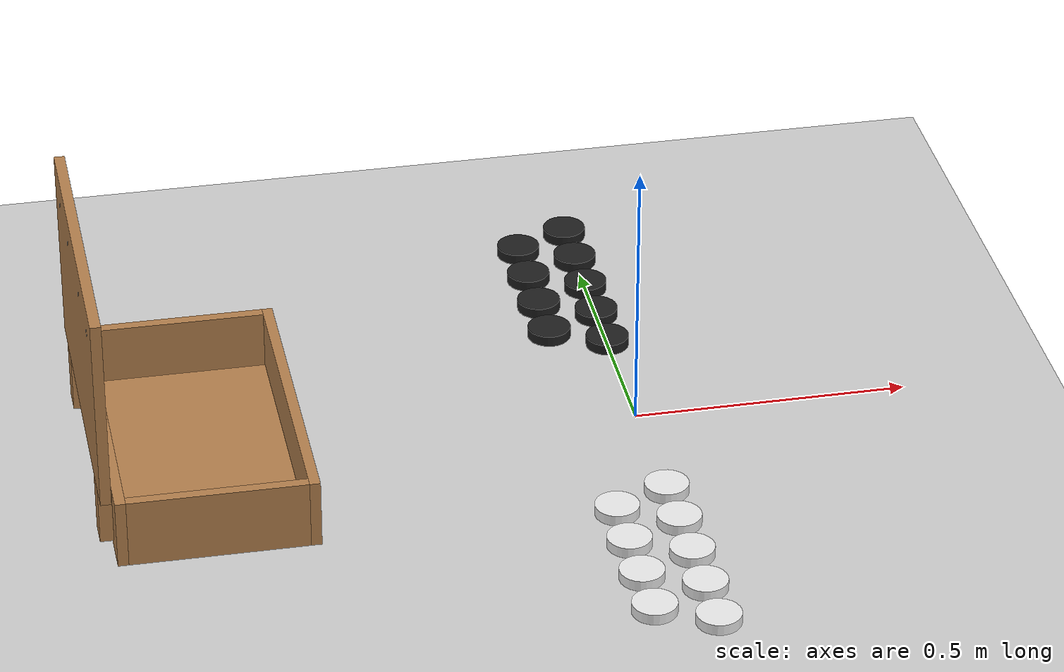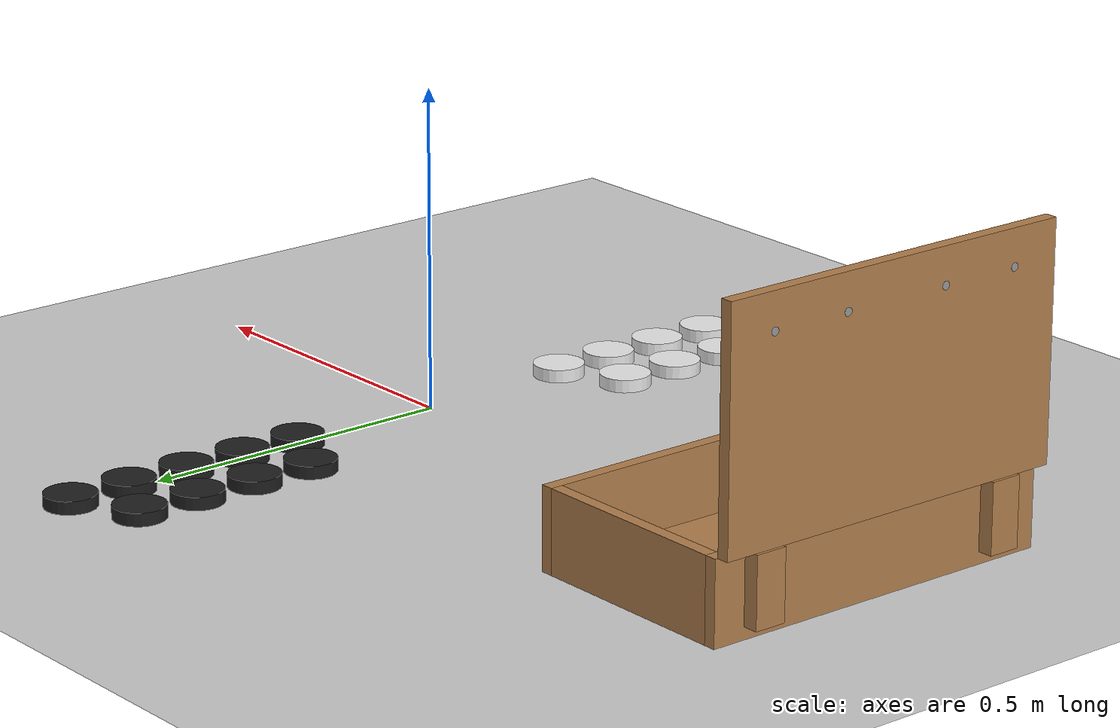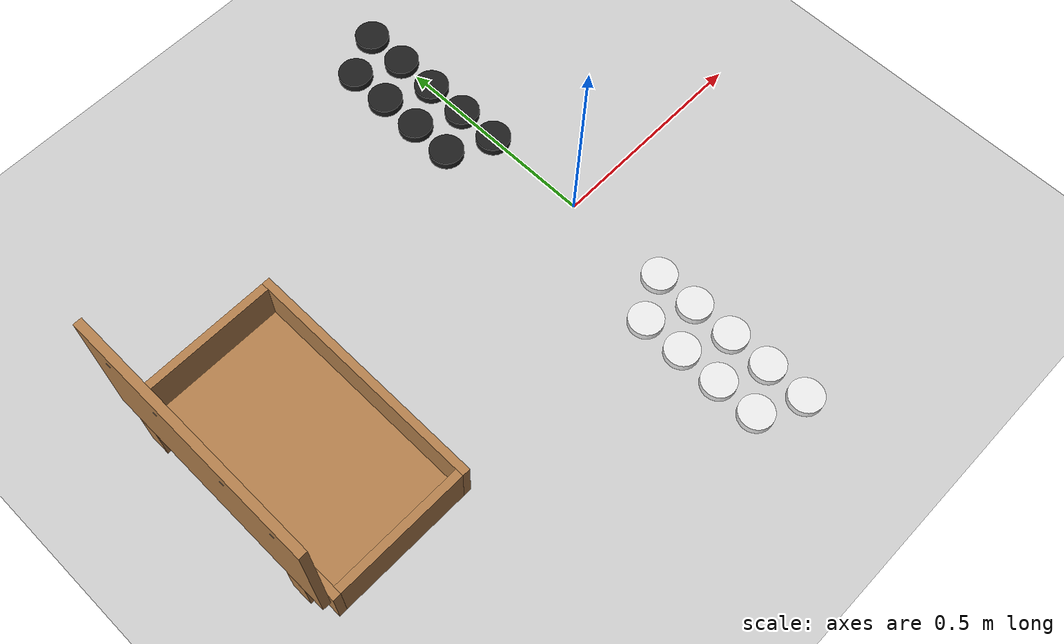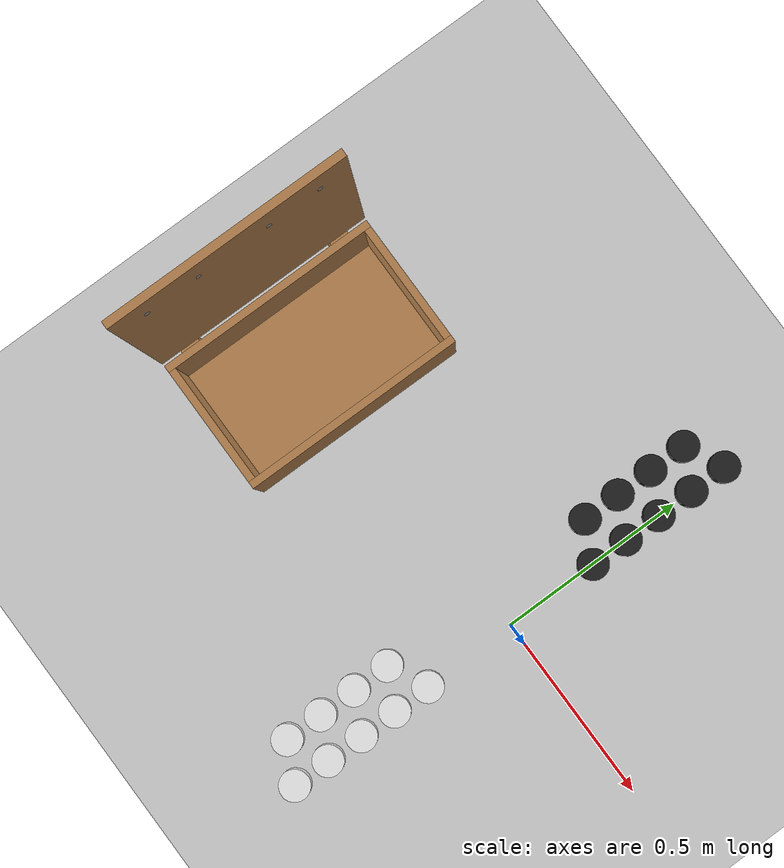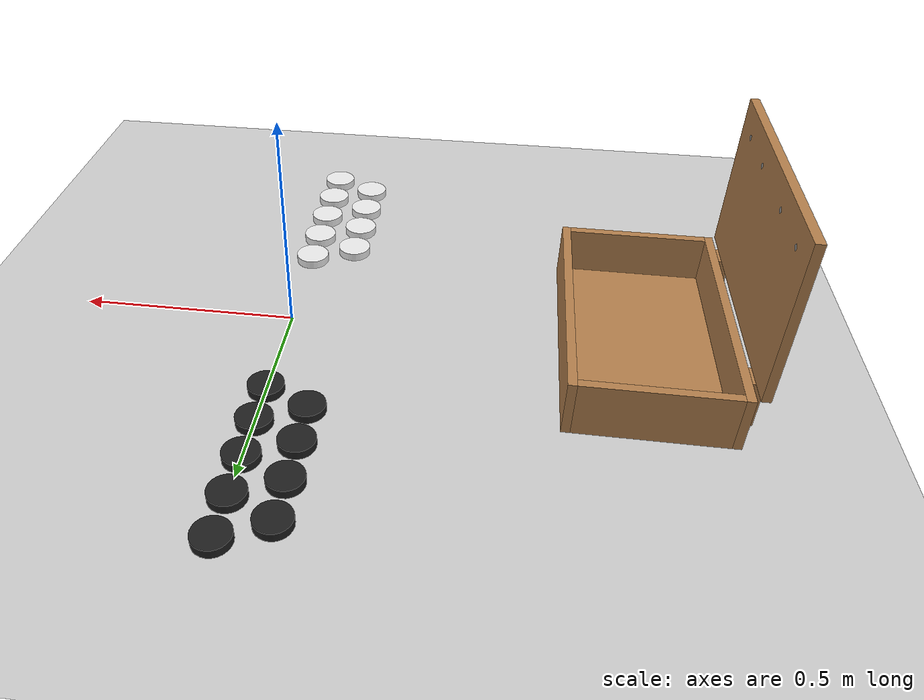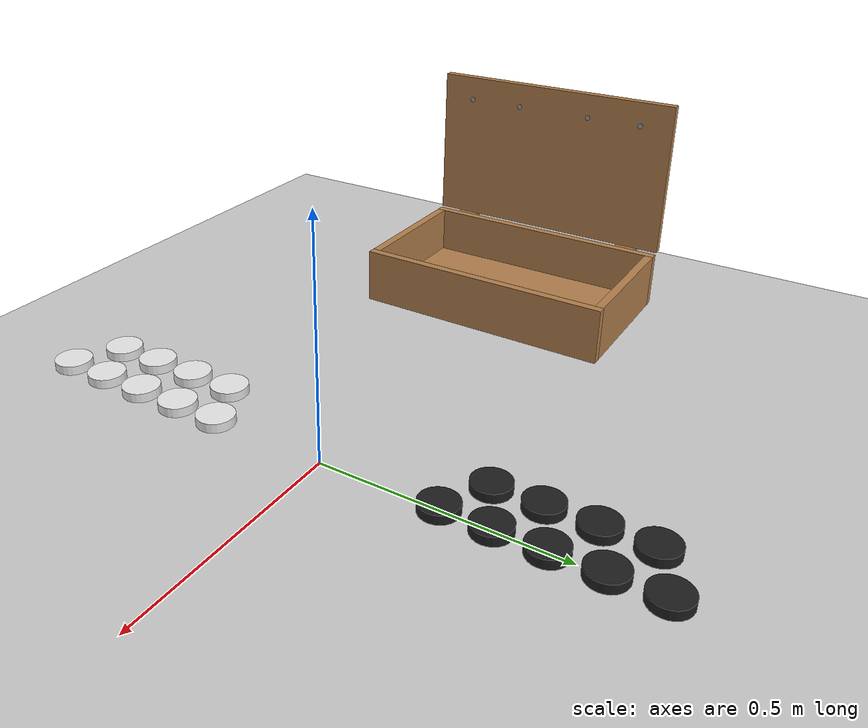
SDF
<sdf version="1.6">
 <world name="default">
  <light name="sun" type="directional">
   <pose>0 0 10 0 -0 0</pose>
   <diffuse>0.8 0.8 0.8 1</diffuse>
   <specular>0.2 0.2 0.2 1</specular>
   <attenuation>
    <range>1000</range>
    <constant>0.9</constant>
    <linear>0.01</linear>
    <quadratic>0.001</quadratic>
   </attenuation>
   <direction>-0.5 0.1 -0.9</direction>
  </light>
  <model name="ground_plane">
   <static>1</static>
   <link name="link">
    <collision name="collision">
     <geometry><plane><normal>0 0 1</normal><size>100 100</size></plane></geometry>
     <surface>
      <contact><collide_bitmask>65535</collide_bitmask></contact>
      <friction><ode><mu>100</mu><mu2>50</mu2></ode></friction>
     </surface>
    </collision>
    <visual name="visual">
     <cast_shadows>0</cast_shadows>
     <geometry><plane><normal>0 0 1</normal><size>100 100</size></plane></geometry>
     <material>
      <script><uri>file://media/materials/scripts/gazebo.material</uri><name>Gazebo/Grey</name></script>
     </material>
    </visual>
   </link>
  </model>
  <gravity>0 0 -9.8</gravity>
  <magnetic_field>6e-06 2.3e-05 -4.2e-05</magnetic_field>
  <atmosphere type="adiabatic"/>
  <physics name="default_physics" default="0" type="ode">
   <max_step_size>0.0015</max_step_size>
   <real_time_factor>1</real_time_factor>
   <real_time_update_rate>1000</real_time_update_rate>
  </physics>
  <scene><ambient>0.4 0.4 0.4 1</ambient><background>0.7 0.7 0.7 1</background><shadows>1</shadows></scene>
  <audio><device>default</device></audio>
  <spherical_coordinates>
   <surface_model>EARTH_WGS84</surface_model>
   <latitude_deg>0</latitude_deg>
   <longitude_deg>0</longitude_deg>
   <elevation>0</elevation>
   <heading_deg>0</heading_deg>
  </spherical_coordinates>
  <model name="wooden_case">
   <link name="base">
    <pose>0 0 0.024 0 -0 0</pose>
    <inertial>
     <pose>-0.022184 0 0.171592 0 -0 0</pose>
     <mass>3.96264</mass>
     <inertia>
      <ixx>0.213536</ixx>
      <ixy>0</ixy>
      <ixz>0.000779377</ixz>
      <iyy>0.0708943</iyy>
      <iyz>0</iyz>
      <izz>0.154604</izz>
     </inertia>
    </inertial>
    <collision name="collision_back">
     <pose>-0.053975 0 0.1778 0 -0 0</pose>
     <geometry><box><size>0.01905 0.5461 0.3175</size></box></geometry>
     <surface>
      <contact>
       <poissons_ratio>0.347</poissons_ratio>
       <elastic_modulus>8.8e+09</elastic_modulus>
       <ode><kp>100000</kp><kd>100</kd><max_vel>100</max_vel><min_depth>0.001</min_depth></ode>
      </contact>
      <friction>
       <torsional>
        <coefficient>1</coefficient>
        <use_patch_radius>0</use_patch_radius>
        <surface_radius>0.01</surface_radius>
       </torsional>
      </friction>
     </surface>
    </collision>
    <visual name="visual_back">
     <pose>-0.053975 0 0.1778 0 -0 0</pose>
     <geometry><box><size>0.01905 0.5461 0.3175</size></box></geometry>
     <material>
      <script><uri>file://media/materials/scripts/gazebo.material</uri><name>Gazebo/Wood</name></script>
     </material>
    </visual>
    <collision name="collision_bottom">
     <pose>0 0 0.009525 0 -0 0</pose>
     <geometry><box><size>0.127 0.5842 0.01905</size></box></geometry>
     <surface>
      <contact>
       <poissons_ratio>0.347</poissons_ratio>
       <elastic_modulus>8.8e+09</elastic_modulus>
       <ode><kp>100000</kp><kd>100</kd><max_vel>100</max_vel><min_depth>0.001</min_depth></ode>
      </contact>
      <friction>
       <torsional>
        <coefficient>1</coefficient>
        <use_patch_radius>0</use_patch_radius>
        <surface_radius>0.01</surface_radius>
       </torsional>
      </friction>
     </surface>
    </collision>
    <visual name="visual_bottom">
     <pose>0 0 0.009525 0 -0 0</pose>
     <geometry><box><size>0.127 0.5842 0.01905</size></box></geometry>
     <material>
      <script><uri>file://media/materials/scripts/gazebo.material</uri><name>Gazebo/Wood</name></script>
     </material>
    </visual>
    <collision name="collision_top">
     <pose>0 0 0.346075 0 -0 0</pose>
     <geometry><box><size>0.127 0.5842 0.01905</size></box></geometry>
     <surface>
      <contact>
       <poissons_ratio>0.347</poissons_ratio>
       <elastic_modulus>8.8e+09</elastic_modulus>
       <ode><kp>100000</kp><kd>100</kd><max_vel>100</max_vel><min_depth>0.001</min_depth></ode>
      </contact>
      <friction>
       <torsional>
        <coefficient>1</coefficient>
        <use_patch_radius>0</use_patch_radius>
        <surface_radius>0.01</surface_radius>
       </torsional>
      </friction>
     </surface>
    </collision>
    <visual name="visual_top">
     <pose>0 0 0.346075 0 -0 0</pose>
     <geometry><box><size>0.127 0.5842 0.01905</size></box></geometry>
     <material>
      <script><uri>file://media/materials/scripts/gazebo.material</uri><name>Gazebo/Wood</name></script>
     </material>
    </visual>
    <collision name="collision_left">
     <pose>0 -0.282575 0.1778 0 -0 0</pose>
     <geometry><box><size>0.127 0.01905 0.3175</size></box></geometry>
     <surface>
      <contact>
       <poissons_ratio>0.347</poissons_ratio>
       <elastic_modulus>8.8e+09</elastic_modulus>
       <ode><kp>100000</kp><kd>100</kd><max_vel>100</max_vel><min_depth>0.001</min_depth></ode>
      </contact>
      <friction>
       <torsional>
        <coefficient>1</coefficient>
        <use_patch_radius>0</use_patch_radius>
        <surface_radius>0.01</surface_radius>
       </torsional>
      </friction>
     </surface>
    </collision>
    <visual name="visual_left">
     <pose>0 -0.282575 0.1778 0 -0 0</pose>
     <geometry><box><size>0.127 0.01905 0.3175</size></box></geometry>
     <material>
      <script><uri>file://media/materials/scripts/gazebo.material</uri><name>Gazebo/Wood</name></script>
     </material>
    </visual>
    <collision name="collision_right">
     <pose>0 0.282575 0.1778 0 -0 0</pose>
     <geometry><box><size>0.127 0.01905 0.3175</size></box></geometry>
     <surface>
      <contact>
       <poissons_ratio>0.347</poissons_ratio>
       <elastic_modulus>8.8e+09</elastic_modulus>
       <ode><kp>100000</kp><kd>100</kd><max_vel>100</max_vel><min_depth>0.001</min_depth></ode>
      </contact>
      <friction>
       <torsional>
        <coefficient>1</coefficient>
        <use_patch_radius>0</use_patch_radius>
        <surface_radius>0.01</surface_radius>
       </torsional>
      </friction>
     </surface>
    </collision>
    <visual name="visual_right">
     <pose>0 0.282575 0.1778 0 -0 0</pose>
     <geometry><box><size>0.127 0.01905 0.3175</size></box></geometry>
     <material>
      <script><uri>file://media/materials/scripts/gazebo.material</uri><name>Gazebo/Wood</name></script>
     </material>
    </visual>
    <collision name="collision_block_left">
     <pose>0.0095 -0.2151 -0.012 0 -0 0</pose>
     <geometry><box><size>0.108 0.05 0.024</size></box></geometry>
     <surface>
      <contact>
       <poissons_ratio>0.347</poissons_ratio>
       <elastic_modulus>8.8e+09</elastic_modulus>
       <ode><kp>100000</kp><kd>100</kd><max_vel>100</max_vel><min_depth>0.001</min_depth></ode>
      </contact>
      <friction>
       <torsional>
        <coefficient>1</coefficient>
        <use_patch_radius>0</use_patch_radius>
        <surface_radius>0.01</surface_radius>
       </torsional>
      </friction>
     </surface>
    </collision>
    <visual name="visual_block_left">
     <pose>0.0095 -0.2151 -0.012 0 -0 0</pose>
     <geometry><box><size>0.108 0.05 0.024</size></box></geometry>
     <material>
      <script><uri>file://media/materials/scripts/gazebo.material</uri><name>Gazebo/Wood</name></script>
     </material>
    </visual>
    <collision name="collision_block_right">
     <pose>0.0095 0.2151 -0.012 0 -0 0</pose>
     <geometry><box><size>0.108 0.05 0.024</size></box></geometry>
     <surface>
      <contact>
       <poissons_ratio>0.347</poissons_ratio>
       <elastic_modulus>8.8e+09</elastic_modulus>
       <ode><kp>100000</kp><kd>100</kd><max_vel>100</max_vel><min_depth>0.001</min_depth></ode>
      </contact>
      <friction>
       <torsional>
        <coefficient>1</coefficient>
        <use_patch_radius>0</use_patch_radius>
        <surface_radius>0.01</surface_radius>
       </torsional>
      </friction>
     </surface>
    </collision>
    <visual name="visual_block_right">
     <pose>0.0095 0.2151 -0.012 0 -0 0</pose>
     <geometry><box><size>0.108 0.05 0.024</size></box></geometry>
     <material>
      <script><uri>file://media/materials/scripts/gazebo.material</uri><name>Gazebo/Wood</name></script>
     </material>
    </visual>
   </link>
   <link name="lid">
    <pose>0.243775 0 0.009525 0 -0 0</pose>
    <inertial>
     <mass>1.97874</mass>
     <inertia>
      <ixx>0.0563367</ixx>
      <ixy>0</ixy>
      <ixz>0</ixz>
      <iyy>0.020911</iyy>
      <iyz>0</iyz>
      <izz>0.0771281</izz>
     </inertia>
    </inertial>
    <collision name="collision">
     <geometry><box><size>0.3556 0.5842 0.01905</size></box></geometry>
     <surface>
      <contact>
       <poissons_ratio>0.347</poissons_ratio>
       <elastic_modulus>8.8e+09</elastic_modulus>
       <ode><kp>100000</kp><kd>100</kd><max_vel>100</max_vel><min_depth>0.001</min_depth></ode>
      </contact>
      <friction>
       <torsional>
        <coefficient>1</coefficient>
        <use_patch_radius>0</use_patch_radius>
        <surface_radius>0.01</surface_radius>
       </torsional>
      </friction>
     </surface>
    </collision>
    <visual name="visual">
     <geometry><box><size>0.3556 0.5842 0.01905</size></box></geometry>
     <material>
      <script><uri>file://media/materials/scripts/gazebo.material</uri><name>Gazebo/Wood</name></script>
     </material>
    </visual>
    <visual name="tee_nut_1">
     <pose>0.122 -0.216 0 0 -0 0</pose>
     <geometry><cylinder><radius>0.00635</radius><length>0.0192405</length></cylinder></geometry>
     <material>
      <script><uri>file://media/materials/scripts/gazebo.material</uri><name>Gazebo/Grey</name></script>
     </material>
    </visual>
    <visual name="tee_nut_2">
     <pose>0.122 -0.088 0 0 -0 0</pose>
     <geometry><cylinder><radius>0.00635</radius><length>0.0192405</length></cylinder></geometry>
     <material>
      <script><uri>file://media/materials/scripts/gazebo.material</uri><name>Gazebo/Grey</name></script>
     </material>
    </visual>
    <visual name="tee_nut_3">
     <pose>0.122 0.088 0 0 -0 0</pose>
     <geometry><cylinder><radius>0.00635</radius><length>0.0192405</length></cylinder></geometry>
     <material>
      <script><uri>file://media/materials/scripts/gazebo.material</uri><name>Gazebo/Grey</name></script>
     </material>
    </visual>
    <visual name="tee_nut_4">
     <pose>0.122 0.216 0 0 -0 0</pose>
     <geometry><cylinder><radius>0.00635</radius><length>0.0192405</length></cylinder></geometry>
     <material>
      <script><uri>file://media/materials/scripts/gazebo.material</uri><name>Gazebo/Grey</name></script>
     </material>
    </visual>
   </link>
   <joint name="lid_hinge" type="revolute">
    <pose>-0.1778 0 0.01905 0 -0 0</pose>
    <parent>base</parent>
    <child>lid</child>
    <axis>
     <xyz>0 1 0</xyz>
     <limit><upper>0.523599</upper><lower>-1.5708</lower></limit>
     <use_parent_model_frame>0</use_parent_model_frame>
     <dynamics><spring_reference>0</spring_reference><spring_stiffness>0</spring_stiffness></dynamics>
    </axis>
   </joint>
   <pose>-0.99996 -0 0.06245 0 -1.57069 3.13789</pose>
  </model>
  <model name="black_piece">
   <link name="link">
    <inertial>
     <mass>0.2</mass>
     <inertia>
      <ixx>8.667e-05</ixx>
      <ixy>0</ixy>
      <ixz>0</ixz>
      <iyy>8.667e-05</iyy>
      <iyz>0</iyz>
      <izz>0.00016</izz>
     </inertia>
    </inertial>
    <visual name="visual">
     <geometry><cylinder><radius>0.04</radius><length>0.02</length></cylinder></geometry>
     <material>
      <script><name>Gazebo/Black</name><uri>file://media/materials/scripts/gazebo.material</uri></script>
      <shader type="vertex"><normal_map>__default__</normal_map></shader>
     </material>
    </visual>
    <collision name="collision">
     <geometry><cylinder><radius>0.04</radius><length>0.02</length></cylinder></geometry>
     <surface>
      <friction>
       <ode><mu>1</mu><mu2>1</mu2><fdir1>0 0 0</fdir1><slip1>0</slip1><slip2>0</slip2></ode>
       <torsional>
        <coefficient>1</coefficient>
        <patch_radius>0</patch_radius>
        <surface_radius>0</surface_radius>
        <use_patch_radius>1</use_patch_radius>
        <ode><slip>0</slip></ode>
       </torsional>
      </friction>
      <bounce><restitution_coefficient>0</restitution_coefficient><threshold>1e+06</threshold></bounce>
      <contact>
       <collide_without_contact>0</collide_without_contact>
       <collide_without_contact_bitmask>1</collide_without_contact_bitmask>
       <collide_bitmask>1</collide_bitmask>
       <ode>
        <soft_cfm>0</soft_cfm>
        <soft_erp>0.2</soft_erp>
        <kp>1e+13</kp>
        <kd>1</kd>
        <max_vel>1</max_vel>
        <min_depth>0</min_depth>
       </ode>
       <bullet>
        <split_impulse>1</split_impulse>
        <split_impulse_penetration_threshold>-0.01</split_impulse_penetration_threshold>
        <soft_cfm>0</soft_cfm>
        <soft_erp>0.2</soft_erp>
        <kp>1e+13</kp>
        <kd>1</kd>
       </bullet>
      </contact>
     </surface>
    </collision>
   </link>
   <static>0</static>
   <pose>-4e-06 0.250003 0.009996 7.6e-05 7.7e-05 -0.000252</pose>
  </model>
  <model name="black_piece_clone">
   <link name="link">
    <inertial>
     <mass>0.2</mass>
     <inertia>
      <ixx>8.667e-05</ixx>
      <ixy>0</ixy>
      <ixz>0</ixz>
      <iyy>8.667e-05</iyy>
      <iyz>0</iyz>
      <izz>0.00016</izz>
     </inertia>
    </inertial>
    <visual name="visual">
     <geometry><cylinder><radius>0.04</radius><length>0.02</length></cylinder></geometry>
     <material>
      <script><name>Gazebo/Black</name><uri>file://media/materials/scripts/gazebo.material</uri></script>
      <shader type="vertex"><normal_map>__default__</normal_map></shader>
     </material>
    </visual>
    <collision name="collision">
     <geometry><cylinder><radius>0.04</radius><length>0.02</length></cylinder></geometry>
     <surface>
      <friction>
       <ode><mu>1</mu><mu2>1</mu2><fdir1>0 0 0</fdir1><slip1>0</slip1><slip2>0</slip2></ode>
       <torsional>
        <coefficient>1</coefficient>
        <patch_radius>0</patch_radius>
        <surface_radius>0</surface_radius>
        <use_patch_radius>1</use_patch_radius>
        <ode><slip>0</slip></ode>
       </torsional>
      </friction>
      <bounce><restitution_coefficient>0</restitution_coefficient><threshold>1e+06</threshold></bounce>
      <contact>
       <collide_without_contact>0</collide_without_contact>
       <collide_without_contact_bitmask>1</collide_without_contact_bitmask>
       <collide_bitmask>1</collide_bitmask>
       <ode>
        <soft_cfm>0</soft_cfm>
        <soft_erp>0.2</soft_erp>
        <kp>1e+13</kp>
        <kd>1</kd>
        <max_vel>1</max_vel>
        <min_depth>0</min_depth>
       </ode>
       <bullet>
        <split_impulse>1</split_impulse>
        <split_impulse_penetration_threshold>-0.01</split_impulse_penetration_threshold>
        <soft_cfm>0</soft_cfm>
        <soft_erp>0.2</soft_erp>
        <kp>1e+13</kp>
        <kd>1</kd>
       </bullet>
      </contact>
     </surface>
    </collision>
   </link>
   <static>0</static>
   <pose>-4e-06 0.350003 0.01 0 0 -0.000215</pose>
  </model>
  <model name="black_piece_clone_clone">
   <link name="link">
    <inertial>
     <mass>0.2</mass>
     <inertia>
      <ixx>8.667e-05</ixx>
      <ixy>0</ixy>
      <ixz>0</ixz>
      <iyy>8.667e-05</iyy>
      <iyz>0</iyz>
      <izz>0.00016</izz>
     </inertia>
    </inertial>
    <visual name="visual">
     <geometry><cylinder><radius>0.04</radius><length>0.02</length></cylinder></geometry>
     <material>
      <script><name>Gazebo/Black</name><uri>file://media/materials/scripts/gazebo.material</uri></script>
      <shader type="vertex"><normal_map>__default__</normal_map></shader>
     </material>
    </visual>
    <collision name="collision">
     <geometry><cylinder><radius>0.04</radius><length>0.02</length></cylinder></geometry>
     <surface>
      <friction>
       <ode><mu>1</mu><mu2>1</mu2><fdir1>0 0 0</fdir1><slip1>0</slip1><slip2>0</slip2></ode>
       <torsional>
        <coefficient>1</coefficient>
        <patch_radius>0</patch_radius>
        <surface_radius>0</surface_radius>
        <use_patch_radius>1</use_patch_radius>
        <ode><slip>0</slip></ode>
       </torsional>
      </friction>
      <bounce><restitution_coefficient>0</restitution_coefficient><threshold>1e+06</threshold></bounce>
      <contact>
       <collide_without_contact>0</collide_without_contact>
       <collide_without_contact_bitmask>1</collide_without_contact_bitmask>
       <collide_bitmask>1</collide_bitmask>
       <ode>
        <soft_cfm>0</soft_cfm>
        <soft_erp>0.2</soft_erp>
        <kp>1e+13</kp>
        <kd>1</kd>
        <max_vel>1</max_vel>
        <min_depth>0</min_depth>
       </ode>
       <bullet>
        <split_impulse>1</split_impulse>
        <split_impulse_penetration_threshold>-0.01</split_impulse_penetration_threshold>
        <soft_cfm>0</soft_cfm>
        <soft_erp>0.2</soft_erp>
        <kp>1e+13</kp>
        <kd>1</kd>
       </bullet>
      </contact>
     </surface>
    </collision>
   </link>
   <static>0</static>
   <pose>-3e-06 0.450003 0.01 0 0 -0.000207</pose>
  </model>
  <model name="black_piece_clone_clone_0">
   <link name="link">
    <inertial>
     <mass>0.2</mass>
     <inertia>
      <ixx>8.667e-05</ixx>
      <ixy>0</ixy>
      <ixz>0</ixz>
      <iyy>8.667e-05</iyy>
      <iyz>0</iyz>
      <izz>0.00016</izz>
     </inertia>
    </inertial>
    <visual name="visual">
     <geometry><cylinder><radius>0.04</radius><length>0.02</length></cylinder></geometry>
     <material>
      <script><name>Gazebo/Black</name><uri>file://media/materials/scripts/gazebo.material</uri></script>
      <shader type="vertex"><normal_map>__default__</normal_map></shader>
     </material>
    </visual>
    <collision name="collision">
     <geometry><cylinder><radius>0.04</radius><length>0.02</length></cylinder></geometry>
     <surface>
      <friction>
       <ode><mu>1</mu><mu2>1</mu2><fdir1>0 0 0</fdir1><slip1>0</slip1><slip2>0</slip2></ode>
       <torsional>
        <coefficient>1</coefficient>
        <patch_radius>0</patch_radius>
        <surface_radius>0</surface_radius>
        <use_patch_radius>1</use_patch_radius>
        <ode><slip>0</slip></ode>
       </torsional>
      </friction>
      <bounce><restitution_coefficient>0</restitution_coefficient><threshold>1e+06</threshold></bounce>
      <contact>
       <collide_without_contact>0</collide_without_contact>
       <collide_without_contact_bitmask>1</collide_without_contact_bitmask>
       <collide_bitmask>1</collide_bitmask>
       <ode>
        <soft_cfm>0</soft_cfm>
        <soft_erp>0.2</soft_erp>
        <kp>1e+13</kp>
        <kd>1</kd>
        <max_vel>1</max_vel>
        <min_depth>0</min_depth>
       </ode>
       <bullet>
        <split_impulse>1</split_impulse>
        <split_impulse_penetration_threshold>-0.01</split_impulse_penetration_threshold>
        <soft_cfm>0</soft_cfm>
        <soft_erp>0.2</soft_erp>
        <kp>1e+13</kp>
        <kd>1</kd>
       </bullet>
      </contact>
     </surface>
    </collision>
   </link>
   <static>0</static>
   <pose>-0.100004 0.400005 0.009997 -7.3e-05 -7.1e-05 -0.000227</pose>
  </model>
  <model name="black_piece_clone_clone_1">
   <link name="link">
    <inertial>
     <mass>0.2</mass>
     <inertia>
      <ixx>8.667e-05</ixx>
      <ixy>0</ixy>
      <ixz>0</ixz>
      <iyy>8.667e-05</iyy>
      <iyz>0</iyz>
      <izz>0.00016</izz>
     </inertia>
    </inertial>
    <visual name="visual">
     <geometry><cylinder><radius>0.04</radius><length>0.02</length></cylinder></geometry>
     <material>
      <script><name>Gazebo/Black</name><uri>file://media/materials/scripts/gazebo.material</uri></script>
      <shader type="vertex"><normal_map>__default__</normal_map></shader>
     </material>
    </visual>
    <collision name="collision">
     <geometry><cylinder><radius>0.04</radius><length>0.02</length></cylinder></geometry>
     <surface>
      <friction>
       <ode><mu>1</mu><mu2>1</mu2><fdir1>0 0 0</fdir1><slip1>0</slip1><slip2>0</slip2></ode>
       <torsional>
        <coefficient>1</coefficient>
        <patch_radius>0</patch_radius>
        <surface_radius>0</surface_radius>
        <use_patch_radius>1</use_patch_radius>
        <ode><slip>0</slip></ode>
       </torsional>
      </friction>
      <bounce><restitution_coefficient>0</restitution_coefficient><threshold>1e+06</threshold></bounce>
      <contact>
       <collide_without_contact>0</collide_without_contact>
       <collide_without_contact_bitmask>1</collide_without_contact_bitmask>
       <collide_bitmask>1</collide_bitmask>
       <ode>
        <soft_cfm>0</soft_cfm>
        <soft_erp>0.2</soft_erp>
        <kp>1e+13</kp>
        <kd>1</kd>
        <max_vel>1</max_vel>
        <min_depth>0</min_depth>
       </ode>
       <bullet>
        <split_impulse>1</split_impulse>
        <split_impulse_penetration_threshold>-0.01</split_impulse_penetration_threshold>
        <soft_cfm>0</soft_cfm>
        <soft_erp>0.2</soft_erp>
        <kp>1e+13</kp>
        <kd>1</kd>
       </bullet>
      </contact>
     </surface>
    </collision>
   </link>
   <static>0</static>
   <pose>-4e-06 0.550005 0.009997 -7.3e-05 -7.1e-05 -0.000229</pose>
  </model>
  <model name="black_piece_clone_clone_2">
   <link name="link">
    <inertial>
     <mass>0.2</mass>
     <inertia>
      <ixx>8.667e-05</ixx>
      <ixy>0</ixy>
      <ixz>0</ixz>
      <iyy>8.667e-05</iyy>
      <iyz>0</iyz>
      <izz>0.00016</izz>
     </inertia>
    </inertial>
    <visual name="visual">
     <geometry><cylinder><radius>0.04</radius><length>0.02</length></cylinder></geometry>
     <material>
      <script><name>Gazebo/Black</name><uri>file://media/materials/scripts/gazebo.material</uri></script>
      <shader type="vertex"><normal_map>__default__</normal_map></shader>
     </material>
    </visual>
    <collision name="collision">
     <geometry><cylinder><radius>0.04</radius><length>0.02</length></cylinder></geometry>
     <surface>
      <friction>
       <ode><mu>1</mu><mu2>1</mu2><fdir1>0 0 0</fdir1><slip1>0</slip1><slip2>0</slip2></ode>
       <torsional>
        <coefficient>1</coefficient>
        <patch_radius>0</patch_radius>
        <surface_radius>0</surface_radius>
        <use_patch_radius>1</use_patch_radius>
        <ode><slip>0</slip></ode>
       </torsional>
      </friction>
      <bounce><restitution_coefficient>0</restitution_coefficient><threshold>1e+06</threshold></bounce>
      <contact>
       <collide_without_contact>0</collide_without_contact>
       <collide_without_contact_bitmask>1</collide_without_contact_bitmask>
       <collide_bitmask>1</collide_bitmask>
       <ode>
        <soft_cfm>0</soft_cfm>
        <soft_erp>0.2</soft_erp>
        <kp>1e+13</kp>
        <kd>1</kd>
        <max_vel>1</max_vel>
        <min_depth>0</min_depth>
       </ode>
       <bullet>
        <split_impulse>1</split_impulse>
        <split_impulse_penetration_threshold>-0.01</split_impulse_penetration_threshold>
        <soft_cfm>0</soft_cfm>
        <soft_erp>0.2</soft_erp>
        <kp>1e+13</kp>
        <kd>1</kd>
       </bullet>
      </contact>
     </surface>
    </collision>
   </link>
   <static>0</static>
   <pose>-0.100003 0.300005 0.009994 -7.7e-05 -7.8e-05 -0.000241</pose>
  </model>
  <model name="black_piece_clone_clone_3">
   <link name="link">
    <inertial>
     <mass>0.2</mass>
     <inertia>
      <ixx>8.667e-05</ixx>
      <ixy>0</ixy>
      <ixz>0</ixz>
      <iyy>8.667e-05</iyy>
      <iyz>0</iyz>
      <izz>0.00016</izz>
     </inertia>
    </inertial>
    <visual name="visual">
     <geometry><cylinder><radius>0.04</radius><length>0.02</length></cylinder></geometry>
     <material>
      <script><name>Gazebo/Black</name><uri>file://media/materials/scripts/gazebo.material</uri></script>
      <shader type="vertex"><normal_map>__default__</normal_map></shader>
     </material>
    </visual>
    <collision name="collision">
     <geometry><cylinder><radius>0.04</radius><length>0.02</length></cylinder></geometry>
     <surface>
      <friction>
       <ode><mu>1</mu><mu2>1</mu2><fdir1>0 0 0</fdir1><slip1>0</slip1><slip2>0</slip2></ode>
       <torsional>
        <coefficient>1</coefficient>
        <patch_radius>0</patch_radius>
        <surface_radius>0</surface_radius>
        <use_patch_radius>1</use_patch_radius>
        <ode><slip>0</slip></ode>
       </torsional>
      </friction>
      <bounce><restitution_coefficient>0</restitution_coefficient><threshold>1e+06</threshold></bounce>
      <contact>
       <collide_without_contact>0</collide_without_contact>
       <collide_without_contact_bitmask>1</collide_without_contact_bitmask>
       <collide_bitmask>1</collide_bitmask>
       <ode>
        <soft_cfm>0</soft_cfm>
        <soft_erp>0.2</soft_erp>
        <kp>1e+13</kp>
        <kd>1</kd>
        <max_vel>1</max_vel>
        <min_depth>0</min_depth>
       </ode>
       <bullet>
        <split_impulse>1</split_impulse>
        <split_impulse_penetration_threshold>-0.01</split_impulse_penetration_threshold>
        <soft_cfm>0</soft_cfm>
        <soft_erp>0.2</soft_erp>
        <kp>1e+13</kp>
        <kd>1</kd>
       </bullet>
      </contact>
     </surface>
    </collision>
   </link>
   <static>0</static>
   <pose>-3e-06 0.650004 0.009996 7.6e-05 7.7e-05 -0.000252</pose>
  </model>
  <model name="black_piece_clone_clone_4">
   <link name="link">
    <inertial>
     <mass>0.2</mass>
     <inertia>
      <ixx>8.667e-05</ixx>
      <ixy>0</ixy>
      <ixz>0</ixz>
      <iyy>8.667e-05</iyy>
      <iyz>0</iyz>
      <izz>0.00016</izz>
     </inertia>
    </inertial>
    <visual name="visual">
     <geometry><cylinder><radius>0.04</radius><length>0.02</length></cylinder></geometry>
     <material>
      <script><name>Gazebo/Black</name><uri>file://media/materials/scripts/gazebo.material</uri></script>
      <shader type="vertex"><normal_map>__default__</normal_map></shader>
     </material>
    </visual>
    <collision name="collision">
     <geometry><cylinder><radius>0.04</radius><length>0.02</length></cylinder></geometry>
     <surface>
      <friction>
       <ode><mu>1</mu><mu2>1</mu2><fdir1>0 0 0</fdir1><slip1>0</slip1><slip2>0</slip2></ode>
       <torsional>
        <coefficient>1</coefficient>
        <patch_radius>0</patch_radius>
        <surface_radius>0</surface_radius>
        <use_patch_radius>1</use_patch_radius>
        <ode><slip>0</slip></ode>
       </torsional>
      </friction>
      <bounce><restitution_coefficient>0</restitution_coefficient><threshold>1e+06</threshold></bounce>
      <contact>
       <collide_without_contact>0</collide_without_contact>
       <collide_without_contact_bitmask>1</collide_without_contact_bitmask>
       <collide_bitmask>1</collide_bitmask>
       <ode>
        <soft_cfm>0</soft_cfm>
        <soft_erp>0.2</soft_erp>
        <kp>1e+13</kp>
        <kd>1</kd>
        <max_vel>1</max_vel>
        <min_depth>0</min_depth>
       </ode>
       <bullet>
        <split_impulse>1</split_impulse>
        <split_impulse_penetration_threshold>-0.01</split_impulse_penetration_threshold>
        <soft_cfm>0</soft_cfm>
        <soft_erp>0.2</soft_erp>
        <kp>1e+13</kp>
        <kd>1</kd>
       </bullet>
      </contact>
     </surface>
    </collision>
   </link>
   <static>0</static>
   <pose>-0.100003 0.500005 0.009994 -7.7e-05 -7.8e-05 -0.000256</pose>
  </model>
  <model name="black_piece_clone_clone_5">
   <link name="link">
    <inertial>
     <mass>0.2</mass>
     <inertia>
      <ixx>8.667e-05</ixx>
      <ixy>0</ixy>
      <ixz>0</ixz>
      <iyy>8.667e-05</iyy>
      <iyz>0</iyz>
      <izz>0.00016</izz>
     </inertia>
    </inertial>
    <visual name="visual">
     <geometry><cylinder><radius>0.04</radius><length>0.02</length></cylinder></geometry>
     <material>
      <script><name>Gazebo/Black</name><uri>file://media/materials/scripts/gazebo.material</uri></script>
      <shader type="vertex"><normal_map>__default__</normal_map></shader>
     </material>
    </visual>
    <collision name="collision">
     <geometry><cylinder><radius>0.04</radius><length>0.02</length></cylinder></geometry>
     <surface>
      <friction>
       <ode><mu>1</mu><mu2>1</mu2><fdir1>0 0 0</fdir1><slip1>0</slip1><slip2>0</slip2></ode>
       <torsional>
        <coefficient>1</coefficient>
        <patch_radius>0</patch_radius>
        <surface_radius>0</surface_radius>
        <use_patch_radius>1</use_patch_radius>
        <ode><slip>0</slip></ode>
       </torsional>
      </friction>
      <bounce><restitution_coefficient>0</restitution_coefficient><threshold>1e+06</threshold></bounce>
      <contact>
       <collide_without_contact>0</collide_without_contact>
       <collide_without_contact_bitmask>1</collide_without_contact_bitmask>
       <collide_bitmask>1</collide_bitmask>
       <ode>
        <soft_cfm>0</soft_cfm>
        <soft_erp>0.2</soft_erp>
        <kp>1e+13</kp>
        <kd>1</kd>
        <max_vel>1</max_vel>
        <min_depth>0</min_depth>
       </ode>
       <bullet>
        <split_impulse>1</split_impulse>
        <split_impulse_penetration_threshold>-0.01</split_impulse_penetration_threshold>
        <soft_cfm>0</soft_cfm>
        <soft_erp>0.2</soft_erp>
        <kp>1e+13</kp>
        <kd>1</kd>
       </bullet>
      </contact>
     </surface>
    </collision>
   </link>
   <static>0</static>
   <pose>-0.100002 0.600004 0.01 0 0 -0.000257</pose>
  </model>
  <model name="white_piece">
   <link name="link">
    <inertial>
     <mass>0.2</mass>
     <inertia>
      <ixx>8.667e-05</ixx>
      <ixy>0</ixy>
      <ixz>0</ixz>
      <iyy>8.667e-05</iyy>
      <iyz>0</iyz>
      <izz>0.00016</izz>
     </inertia>
    </inertial>
    <visual name="visual">
     <geometry><cylinder><radius>0.04</radius><length>0.02</length></cylinder></geometry>
     <material>
      <script><name>Gazebo/White</name><uri>file://media/materials/scripts/gazebo.material</uri></script>
      <shader type="vertex"><normal_map>__default__</normal_map></shader>
     </material>
    </visual>
    <collision name="collision">
     <geometry><cylinder><radius>0.04</radius><length>0.02</length></cylinder></geometry>
     <surface>
      <friction>
       <ode><mu>1</mu><mu2>1</mu2><fdir1>0 0 0</fdir1><slip1>0</slip1><slip2>0</slip2></ode>
       <torsional>
        <coefficient>1</coefficient>
        <patch_radius>0</patch_radius>
        <surface_radius>0</surface_radius>
        <use_patch_radius>1</use_patch_radius>
        <ode><slip>0</slip></ode>
       </torsional>
      </friction>
      <bounce><restitution_coefficient>0</restitution_coefficient><threshold>1e+06</threshold></bounce>
      <contact>
       <collide_without_contact>0</collide_without_contact>
       <collide_without_contact_bitmask>1</collide_without_contact_bitmask>
       <collide_bitmask>1</collide_bitmask>
       <ode>
        <soft_cfm>0</soft_cfm>
        <soft_erp>0.2</soft_erp>
        <kp>1e+13</kp>
        <kd>1</kd>
        <max_vel>1</max_vel>
        <min_depth>0</min_depth>
       </ode>
       <bullet>
        <split_impulse>1</split_impulse>
        <split_impulse_penetration_threshold>-0.01</split_impulse_penetration_threshold>
        <soft_cfm>0</soft_cfm>
        <soft_erp>0.2</soft_erp>
        <kp>1e+13</kp>
        <kd>1</kd>
       </bullet>
      </contact>
     </surface>
    </collision>
   </link>
   <static>0</static>
   <pose>-0 -0.25 0.01 -0 -0 -0</pose>
  </model>
  <model name="white_piece_clone">
   <link name="link">
    <inertial>
     <mass>0.2</mass>
     <inertia>
      <ixx>8.667e-05</ixx>
      <ixy>0</ixy>
      <ixz>0</ixz>
      <iyy>8.667e-05</iyy>
      <iyz>0</iyz>
      <izz>0.00016</izz>
     </inertia>
    </inertial>
    <visual name="visual">
     <geometry><cylinder><radius>0.04</radius><length>0.02</length></cylinder></geometry>
     <material>
      <script><name>Gazebo/White</name><uri>file://media/materials/scripts/gazebo.material</uri></script>
      <shader type="vertex"><normal_map>__default__</normal_map></shader>
     </material>
    </visual>
    <collision name="collision">
     <geometry><cylinder><radius>0.04</radius><length>0.02</length></cylinder></geometry>
     <surface>
      <friction>
       <ode><mu>1</mu><mu2>1</mu2><fdir1>0 0 0</fdir1><slip1>0</slip1><slip2>0</slip2></ode>
       <torsional>
        <coefficient>1</coefficient>
        <patch_radius>0</patch_radius>
        <surface_radius>0</surface_radius>
        <use_patch_radius>1</use_patch_radius>
        <ode><slip>0</slip></ode>
       </torsional>
      </friction>
      <bounce><restitution_coefficient>0</restitution_coefficient><threshold>1e+06</threshold></bounce>
      <contact>
       <collide_without_contact>0</collide_without_contact>
       <collide_without_contact_bitmask>1</collide_without_contact_bitmask>
       <collide_bitmask>1</collide_bitmask>
       <ode>
        <soft_cfm>0</soft_cfm>
        <soft_erp>0.2</soft_erp>
        <kp>1e+13</kp>
        <kd>1</kd>
        <max_vel>1</max_vel>
        <min_depth>0</min_depth>
       </ode>
       <bullet>
        <split_impulse>1</split_impulse>
        <split_impulse_penetration_threshold>-0.01</split_impulse_penetration_threshold>
        <soft_cfm>0</soft_cfm>
        <soft_erp>0.2</soft_erp>
        <kp>1e+13</kp>
        <kd>1</kd>
       </bullet>
      </contact>
     </surface>
    </collision>
   </link>
   <static>0</static>
   <pose>-0 -0.35 0.01 0 -0 0</pose>
  </model>
  <model name="white_piece_0">
   <link name="link">
    <inertial>
     <mass>0.2</mass>
     <inertia>
      <ixx>8.667e-05</ixx>
      <ixy>0</ixy>
      <ixz>0</ixz>
      <iyy>8.667e-05</iyy>
      <iyz>0</iyz>
      <izz>0.00016</izz>
     </inertia>
    </inertial>
    <visual name="visual">
     <geometry><cylinder><radius>0.04</radius><length>0.02</length></cylinder></geometry>
     <material>
      <script><name>Gazebo/White</name><uri>file://media/materials/scripts/gazebo.material</uri></script>
      <shader type="vertex"><normal_map>__default__</normal_map></shader>
     </material>
    </visual>
    <collision name="collision">
     <geometry><cylinder><radius>0.04</radius><length>0.02</length></cylinder></geometry>
     <surface>
      <friction>
       <ode><mu>1</mu><mu2>1</mu2><fdir1>0 0 0</fdir1><slip1>0</slip1><slip2>0</slip2></ode>
       <torsional>
        <coefficient>1</coefficient>
        <patch_radius>0</patch_radius>
        <surface_radius>0</surface_radius>
        <use_patch_radius>1</use_patch_radius>
        <ode><slip>0</slip></ode>
       </torsional>
      </friction>
      <bounce><restitution_coefficient>0</restitution_coefficient><threshold>1e+06</threshold></bounce>
      <contact>
       <collide_without_contact>0</collide_without_contact>
       <collide_without_contact_bitmask>1</collide_without_contact_bitmask>
       <collide_bitmask>1</collide_bitmask>
       <ode>
        <soft_cfm>0</soft_cfm>
        <soft_erp>0.2</soft_erp>
        <kp>1e+13</kp>
        <kd>1</kd>
        <max_vel>1</max_vel>
        <min_depth>0</min_depth>
       </ode>
       <bullet>
        <split_impulse>1</split_impulse>
        <split_impulse_penetration_threshold>-0.01</split_impulse_penetration_threshold>
        <soft_cfm>0</soft_cfm>
        <soft_erp>0.2</soft_erp>
        <kp>1e+13</kp>
        <kd>1</kd>
       </bullet>
      </contact>
     </surface>
    </collision>
   </link>
   <static>0</static>
   <pose>8e-06 -0.449988 0.01 0 -0 0.000514</pose>
  </model>
  <model name="white_piece_0_clone">
   <link name="link">
    <inertial>
     <mass>0.2</mass>
     <inertia>
      <ixx>8.667e-05</ixx>
      <ixy>0</ixy>
      <ixz>0</ixz>
      <iyy>8.667e-05</iyy>
      <iyz>0</iyz>
      <izz>0.00016</izz>
     </inertia>
    </inertial>
    <visual name="visual">
     <geometry><cylinder><radius>0.04</radius><length>0.02</length></cylinder></geometry>
     <material>
      <script><name>Gazebo/White</name><uri>file://media/materials/scripts/gazebo.material</uri></script>
      <shader type="vertex"><normal_map>__default__</normal_map></shader>
     </material>
    </visual>
    <collision name="collision">
     <geometry><cylinder><radius>0.04</radius><length>0.02</length></cylinder></geometry>
     <surface>
      <friction>
       <ode><mu>1</mu><mu2>1</mu2><fdir1>0 0 0</fdir1><slip1>0</slip1><slip2>0</slip2></ode>
       <torsional>
        <coefficient>1</coefficient>
        <patch_radius>0</patch_radius>
        <surface_radius>0</surface_radius>
        <use_patch_radius>1</use_patch_radius>
        <ode><slip>0</slip></ode>
       </torsional>
      </friction>
      <bounce><restitution_coefficient>0</restitution_coefficient><threshold>1e+06</threshold></bounce>
      <contact>
       <collide_without_contact>0</collide_without_contact>
       <collide_without_contact_bitmask>1</collide_without_contact_bitmask>
       <collide_bitmask>1</collide_bitmask>
       <ode>
        <soft_cfm>0</soft_cfm>
        <soft_erp>0.2</soft_erp>
        <kp>1e+13</kp>
        <kd>1</kd>
        <max_vel>1</max_vel>
        <min_depth>0</min_depth>
       </ode>
       <bullet>
        <split_impulse>1</split_impulse>
        <split_impulse_penetration_threshold>-0.01</split_impulse_penetration_threshold>
        <soft_cfm>0</soft_cfm>
        <soft_erp>0.2</soft_erp>
        <kp>1e+13</kp>
        <kd>1</kd>
       </bullet>
      </contact>
     </surface>
    </collision>
   </link>
   <static>0</static>
   <pose>-1e-06 -0.549999 0.009993 -5.8e-05 -5.8e-05 -3e-06</pose>
  </model>
  <model name="white_piece_0_clone_0">
   <link name="link">
    <inertial>
     <mass>0.2</mass>
     <inertia>
      <ixx>8.667e-05</ixx>
      <ixy>0</ixy>
      <ixz>0</ixz>
      <iyy>8.667e-05</iyy>
      <iyz>0</iyz>
      <izz>0.00016</izz>
     </inertia>
    </inertial>
    <visual name="visual">
     <geometry><cylinder><radius>0.04</radius><length>0.02</length></cylinder></geometry>
     <material>
      <script><name>Gazebo/White</name><uri>file://media/materials/scripts/gazebo.material</uri></script>
      <shader type="vertex"><normal_map>__default__</normal_map></shader>
     </material>
    </visual>
    <collision name="collision">
     <geometry><cylinder><radius>0.04</radius><length>0.02</length></cylinder></geometry>
     <surface>
      <friction>
       <ode><mu>1</mu><mu2>1</mu2><fdir1>0 0 0</fdir1><slip1>0</slip1><slip2>0</slip2></ode>
       <torsional>
        <coefficient>1</coefficient>
        <patch_radius>0</patch_radius>
        <surface_radius>0</surface_radius>
        <use_patch_radius>1</use_patch_radius>
        <ode><slip>0</slip></ode>
       </torsional>
      </friction>
      <bounce><restitution_coefficient>0</restitution_coefficient><threshold>1e+06</threshold></bounce>
      <contact>
       <collide_without_contact>0</collide_without_contact>
       <collide_without_contact_bitmask>1</collide_without_contact_bitmask>
       <collide_bitmask>1</collide_bitmask>
       <ode>
        <soft_cfm>0</soft_cfm>
        <soft_erp>0.2</soft_erp>
        <kp>1e+13</kp>
        <kd>1</kd>
        <max_vel>1</max_vel>
        <min_depth>0</min_depth>
       </ode>
       <bullet>
        <split_impulse>1</split_impulse>
        <split_impulse_penetration_threshold>-0.01</split_impulse_penetration_threshold>
        <soft_cfm>0</soft_cfm>
        <soft_erp>0.2</soft_erp>
        <kp>1e+13</kp>
        <kd>1</kd>
       </bullet>
      </contact>
     </surface>
    </collision>
   </link>
   <static>0</static>
   <pose>4e-06 -0.649995 0.01 0 -0 0.000246</pose>
  </model>
  <model name="white_piece_0_clone_1">
   <link name="link">
    <inertial>
     <mass>0.2</mass>
     <inertia>
      <ixx>8.667e-05</ixx>
      <ixy>0</ixy>
      <ixz>0</ixz>
      <iyy>8.667e-05</iyy>
      <iyz>0</iyz>
      <izz>0.00016</izz>
     </inertia>
    </inertial>
    <visual name="visual">
     <geometry><cylinder><radius>0.04</radius><length>0.02</length></cylinder></geometry>
     <material>
      <script><name>Gazebo/White</name><uri>file://media/materials/scripts/gazebo.material</uri></script>
      <shader type="vertex"><normal_map>__default__</normal_map></shader>
     </material>
    </visual>
    <collision name="collision">
     <geometry><cylinder><radius>0.04</radius><length>0.02</length></cylinder></geometry>
     <surface>
      <friction>
       <ode><mu>1</mu><mu2>1</mu2><fdir1>0 0 0</fdir1><slip1>0</slip1><slip2>0</slip2></ode>
       <torsional>
        <coefficient>1</coefficient>
        <patch_radius>0</patch_radius>
        <surface_radius>0</surface_radius>
        <use_patch_radius>1</use_patch_radius>
        <ode><slip>0</slip></ode>
       </torsional>
      </friction>
      <bounce><restitution_coefficient>0</restitution_coefficient><threshold>1e+06</threshold></bounce>
      <contact>
       <collide_without_contact>0</collide_without_contact>
       <collide_without_contact_bitmask>1</collide_without_contact_bitmask>
       <collide_bitmask>1</collide_bitmask>
       <ode>
        <soft_cfm>0</soft_cfm>
        <soft_erp>0.2</soft_erp>
        <kp>1e+13</kp>
        <kd>1</kd>
        <max_vel>1</max_vel>
        <min_depth>0</min_depth>
       </ode>
       <bullet>
        <split_impulse>1</split_impulse>
        <split_impulse_penetration_threshold>-0.01</split_impulse_penetration_threshold>
        <soft_cfm>0</soft_cfm>
        <soft_erp>0.2</soft_erp>
        <kp>1e+13</kp>
        <kd>1</kd>
       </bullet>
      </contact>
     </surface>
    </collision>
   </link>
   <static>0</static>
   <pose>-0.099997 -0.299351 0.01 0 -0 0.00023</pose>
  </model>
  <model name="white_piece_0_clone_2">
   <link name="link">
    <inertial>
     <mass>0.2</mass>
     <inertia>
      <ixx>8.667e-05</ixx>
      <ixy>0</ixy>
      <ixz>0</ixz>
      <iyy>8.667e-05</iyy>
      <iyz>0</iyz>
      <izz>0.00016</izz>
     </inertia>
    </inertial>
    <visual name="visual">
     <geometry><cylinder><radius>0.04</radius><length>0.02</length></cylinder></geometry>
     <material>
      <script><name>Gazebo/White</name><uri>file://media/materials/scripts/gazebo.material</uri></script>
      <shader type="vertex"><normal_map>__default__</normal_map></shader>
     </material>
    </visual>
    <collision name="collision">
     <geometry><cylinder><radius>0.04</radius><length>0.02</length></cylinder></geometry>
     <surface>
      <friction>
       <ode><mu>1</mu><mu2>1</mu2><fdir1>0 0 0</fdir1><slip1>0</slip1><slip2>0</slip2></ode>
       <torsional>
        <coefficient>1</coefficient>
        <patch_radius>0</patch_radius>
        <surface_radius>0</surface_radius>
        <use_patch_radius>1</use_patch_radius>
        <ode><slip>0</slip></ode>
       </torsional>
      </friction>
      <bounce><restitution_coefficient>0</restitution_coefficient><threshold>1e+06</threshold></bounce>
      <contact>
       <collide_without_contact>0</collide_without_contact>
       <collide_without_contact_bitmask>1</collide_without_contact_bitmask>
       <collide_bitmask>1</collide_bitmask>
       <ode>
        <soft_cfm>0</soft_cfm>
        <soft_erp>0.2</soft_erp>
        <kp>1e+13</kp>
        <kd>1</kd>
        <max_vel>1</max_vel>
        <min_depth>0</min_depth>
       </ode>
       <bullet>
        <split_impulse>1</split_impulse>
        <split_impulse_penetration_threshold>-0.01</split_impulse_penetration_threshold>
        <soft_cfm>0</soft_cfm>
        <soft_erp>0.2</soft_erp>
        <kp>1e+13</kp>
        <kd>1</kd>
       </bullet>
      </contact>
     </surface>
    </collision>
   </link>
   <static>0</static>
   <pose>-0.1 -0.4 0.01 0 -0 3.6e-05</pose>
  </model>
  <model name="white_piece_0_clone_3">
   <link name="link">
    <inertial>
     <mass>0.2</mass>
     <inertia>
      <ixx>8.667e-05</ixx>
      <ixy>0</ixy>
      <ixz>0</ixz>
      <iyy>8.667e-05</iyy>
      <iyz>0</iyz>
      <izz>0.00016</izz>
     </inertia>
    </inertial>
    <visual name="visual">
     <geometry><cylinder><radius>0.04</radius><length>0.02</length></cylinder></geometry>
     <material>
      <script><name>Gazebo/White</name><uri>file://media/materials/scripts/gazebo.material</uri></script>
      <shader type="vertex"><normal_map>__default__</normal_map></shader>
     </material>
    </visual>
    <collision name="collision">
     <geometry><cylinder><radius>0.04</radius><length>0.02</length></cylinder></geometry>
     <surface>
      <friction>
       <ode><mu>1</mu><mu2>1</mu2><fdir1>0 0 0</fdir1><slip1>0</slip1><slip2>0</slip2></ode>
       <torsional>
        <coefficient>1</coefficient>
        <patch_radius>0</patch_radius>
        <surface_radius>0</surface_radius>
        <use_patch_radius>1</use_patch_radius>
        <ode><slip>0</slip></ode>
       </torsional>
      </friction>
      <bounce><restitution_coefficient>0</restitution_coefficient><threshold>1e+06</threshold></bounce>
      <contact>
       <collide_without_contact>0</collide_without_contact>
       <collide_without_contact_bitmask>1</collide_without_contact_bitmask>
       <collide_bitmask>1</collide_bitmask>
       <ode>
        <soft_cfm>0</soft_cfm>
        <soft_erp>0.2</soft_erp>
        <kp>1e+13</kp>
        <kd>1</kd>
        <max_vel>1</max_vel>
        <min_depth>0</min_depth>
       </ode>
       <bullet>
        <split_impulse>1</split_impulse>
        <split_impulse_penetration_threshold>-0.01</split_impulse_penetration_threshold>
        <soft_cfm>0</soft_cfm>
        <soft_erp>0.2</soft_erp>
        <kp>1e+13</kp>
        <kd>1</kd>
       </bullet>
      </contact>
     </surface>
    </collision>
   </link>
   <static>0</static>
   <pose>-0.099993 -0.499989 0.01 0 -0 0.00051</pose>
  </model>
  <model name="white_piece_0_clone_4">
   <link name="link">
    <inertial>
     <mass>0.2</mass>
     <inertia>
      <ixx>8.667e-05</ixx>
      <ixy>0</ixy>
      <ixz>0</ixz>
      <iyy>8.667e-05</iyy>
      <iyz>0</iyz>
      <izz>0.00016</izz>
     </inertia>
    </inertial>
    <visual name="visual">
     <geometry><cylinder><radius>0.04</radius><length>0.02</length></cylinder></geometry>
     <material>
      <script><name>Gazebo/White</name><uri>file://media/materials/scripts/gazebo.material</uri></script>
      <shader type="vertex"><normal_map>__default__</normal_map></shader>
     </material>
    </visual>
    <collision name="collision">
     <geometry><cylinder><radius>0.04</radius><length>0.02</length></cylinder></geometry>
     <surface>
      <friction>
       <ode><mu>1</mu><mu2>1</mu2><fdir1>0 0 0</fdir1><slip1>0</slip1><slip2>0</slip2></ode>
       <torsional>
        <coefficient>1</coefficient>
        <patch_radius>0</patch_radius>
        <surface_radius>0</surface_radius>
        <use_patch_radius>1</use_patch_radius>
        <ode><slip>0</slip></ode>
       </torsional>
      </friction>
      <bounce><restitution_coefficient>0</restitution_coefficient><threshold>1e+06</threshold></bounce>
      <contact>
       <collide_without_contact>0</collide_without_contact>
       <collide_without_contact_bitmask>1</collide_without_contact_bitmask>
       <collide_bitmask>1</collide_bitmask>
       <ode>
        <soft_cfm>0</soft_cfm>
        <soft_erp>0.2</soft_erp>
        <kp>1e+13</kp>
        <kd>1</kd>
        <max_vel>1</max_vel>
        <min_depth>0</min_depth>
       </ode>
       <bullet>
        <split_impulse>1</split_impulse>
        <split_impulse_penetration_threshold>-0.01</split_impulse_penetration_threshold>
        <soft_cfm>0</soft_cfm>
        <soft_erp>0.2</soft_erp>
        <kp>1e+13</kp>
        <kd>1</kd>
       </bullet>
      </contact>
     </surface>
    </collision>
   </link>
   <static>0</static>
   <pose>-0.1 -0.6 0.01 0 -0 4e-05</pose>
  </model>
 </world>
</sdf>
